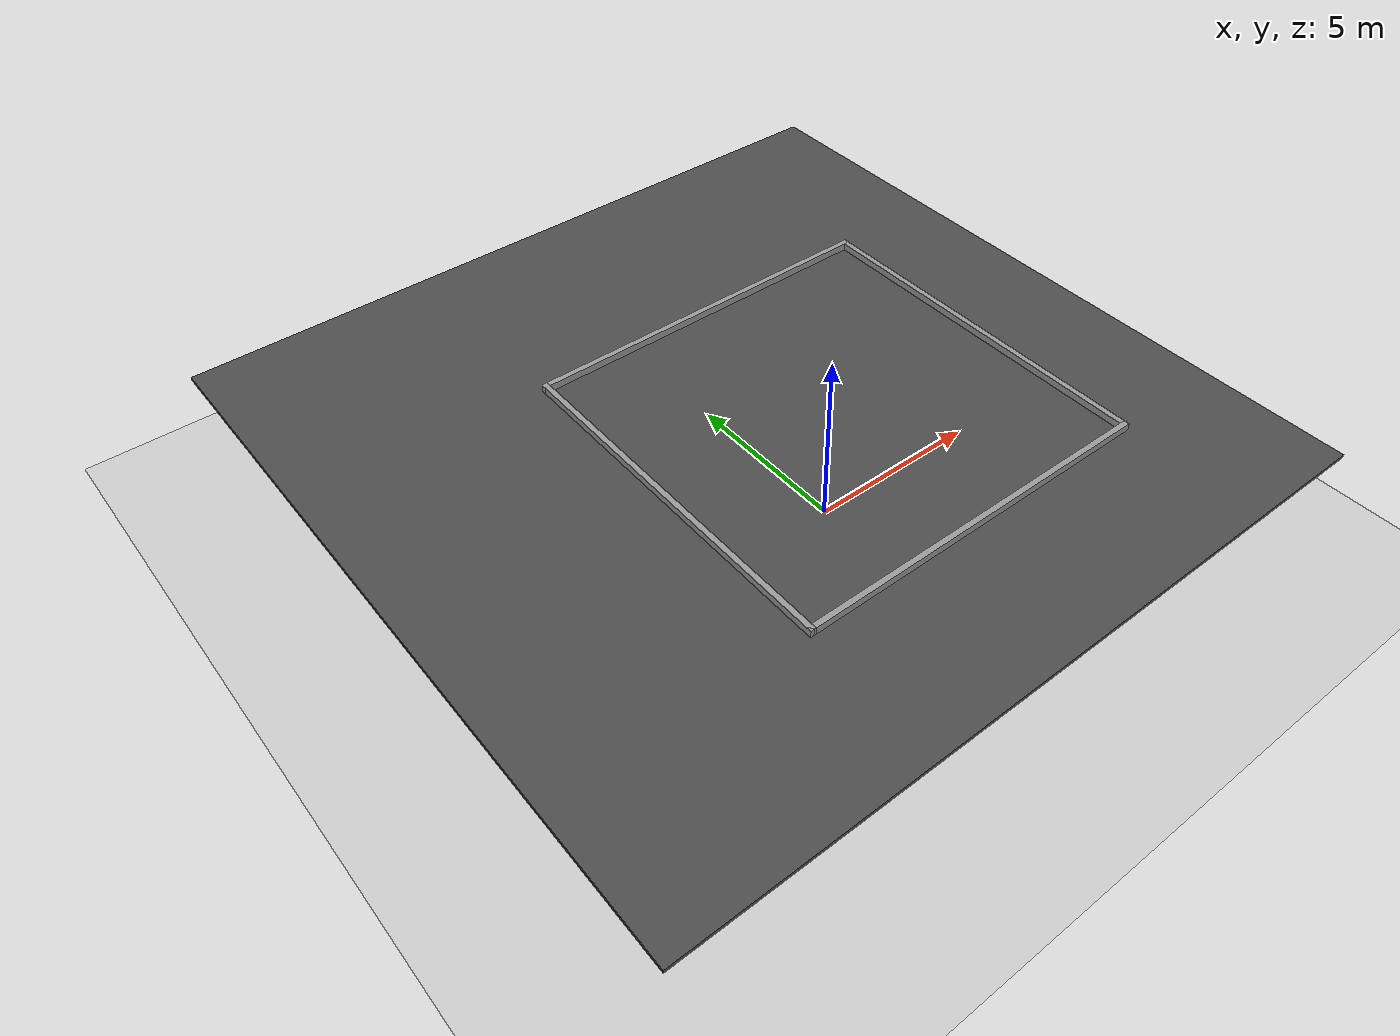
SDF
<sdf version="1.7">
 <world name="default">
  <model name="ground_plane">
   <static>1</static>
   <link name="link">
    <collision name="collision">
     <geometry><plane><normal>0 0 1</normal><size>100 100</size></plane></geometry>
     <surface><friction><ode><mu>100</mu><mu2>50</mu2></ode></friction></surface>
    </collision>
    <visual name="visual">
     <cast_shadows>0</cast_shadows>
     <geometry><plane><normal>0 0 1</normal><size>100 100</size></plane></geometry>
     <material>
      <script><uri>file://media/materials/scripts/gazebo.material</uri><name>Gazebo/Grey</name></script>
     </material>
    </visual>
   </link>
  </model>
  <model name="Indoor_emptyroom">
   <link name="Wall_31">
    <collision name="Wall_31_Collision">
     <geometry><box><size>10.15 0.15 5</size></box></geometry>
     <pose>0 0 1.25 0 -0 0</pose>
    </collision>
    <visual name="Wall_31_Visual">
     <pose>0 0 1.25 0 -0 0</pose>
     <geometry><box><size>10.15 0.15 5</size></box></geometry>
     <material>
      <script><uri>file://media/materials/scripts/gazebo.material</uri><name>Gazebo/Grey</name></script>
      <ambient>1 1 1 1</ambient>
     </material>
     <meta><layer>0</layer></meta>
    </visual>
    <pose>0 -5 0 0 -0 0</pose>
   </link>
   <link name="Wall_32">
    <collision name="Wall_32_Collision">
     <geometry><box><size>10.15 0.15 5</size></box></geometry>
     <pose>0 0 1.25 0 -0 0</pose>
    </collision>
    <visual name="Wall_32_Visual">
     <pose>0 0 1.25 0 -0 0</pose>
     <geometry><box><size>10.15 0.15 5</size></box></geometry>
     <material>
      <script><uri>file://media/materials/scripts/gazebo.material</uri><name>Gazebo/Grey</name></script>
      <ambient>1 1 1 1</ambient>
     </material>
     <meta><layer>0</layer></meta>
    </visual>
    <pose>5 0 0 0 -0 1.5708</pose>
   </link>
   <link name="Wall_33">
    <collision name="Wall_33_Collision">
     <geometry><box><size>10.15 0.15 5</size></box></geometry>
     <pose>0 0 1.25 0 -0 0</pose>
    </collision>
    <visual name="Wall_33_Visual">
     <pose>0 0 1.25 0 -0 0</pose>
     <geometry><box><size>10.15 0.15 5</size></box></geometry>
     <material>
      <script><uri>file://media/materials/scripts/gazebo.material</uri><name>Gazebo/Grey</name></script>
      <ambient>1 1 1 1</ambient>
     </material>
     <meta><layer>0</layer></meta>
    </visual>
    <pose>0 5 0 0 -0 3.14159</pose>
   </link>
   <link name="Wall_34">
    <collision name="Wall_34_Collision">
     <geometry><box><size>10.15 0.15 5</size></box></geometry>
     <pose>0 0 1.25 0 -0 0</pose>
    </collision>
    <visual name="Wall_34_Visual">
     <pose>0 0 1.25 0 -0 0</pose>
     <geometry><box><size>10.15 0.15 5</size></box></geometry>
     <material>
      <script><uri>file://media/materials/scripts/gazebo.material</uri><name>Gazebo/Grey</name></script>
      <ambient>1 1 1 1</ambient>
     </material>
     <meta><layer>0</layer></meta>
    </visual>
    <pose>-5 0 0 0 -0 -1.5708</pose>
   </link>
   <static>1</static>
  </model>
  <model name="landing-sign">
   <static>1</static>
   <pose>1.0 0.0 -0.02 0 -0 0</pose>
   <link name="link">
    <collision name="collision"><geometry><box><size>1 1 0.05</size></box></geometry></collision>
    <visual name="visual">
     <geometry><box><size>1 1 0.05</size></box></geometry>
     <material>
      <script>
       <uri>model://landing-sign/materials/scripts/landing.material</uri>
       <name>Gazebo/LandingPlatform</name>
      </script>
     </material>
    </visual>
   </link>
  </model>
  <model name="landing-sign1">
   <static>0</static>
   <pose>1.0 0.0 -0.02 0 -0 0</pose>
   <allow_auto_disable>0</allow_auto_disable>
   <link name="link">
    <gravity>0</gravity>
    <kinematic>1</kinematic>
    <inertial>
     <mass>5</mass>
     <inertia>
      <ixx>0.417708</ixx>
      <iyy>0.417708</iyy>
      <izz>0.833333</izz>
      <ixy>0</ixy>
      <ixz>0</ixz>
      <iyz>0</iyz>
     </inertia>
    </inertial>
    <collision name="collision">
     <geometry><box><size>1 1 0.001</size></box></geometry>
     <surface>
      <contact><collide_bitmask>65535</collide_bitmask></contact>
      <friction><ode><mu>1</mu><mu2>1</mu2><slip1>0</slip1><slip2>0</slip2></ode></friction>
     </surface>
    </collision>
    <visual name="visual">
     <geometry><box><size>1 1 0.05</size></box></geometry>
     <material>
      <script>
       <uri>model://landing-sign/materials/scripts/landing.material</uri>
       <name>Gazebo/LandingPlatform</name>
      </script>
     </material>
    </visual>
    <plugin name="moving_platform" filename="libmoving_platform_plugin.so">
     <link_name>link</link_name>
     <axis>y</axis>
     <amplitude>1</amplitude>
     <max_speed>0.5</max_speed>
     <center>0 0 0</center>
    </plugin>
   </link>
  </model>
  <model name="landing-sign-moving">
   <static>0</static>
   <pose>3.5 -3.5 0.025 0 -0 0</pose>
   <allow_auto_disable>0</allow_auto_disable>
   <link name="link">
    <gravity>0</gravity>
    <kinematic>1</kinematic>
    <inertial>
     <mass>5</mass>
     <inertia>
      <ixx>0.417708</ixx>
      <iyy>0.417708</iyy>
      <izz>0.833333</izz>
      <ixy>0</ixy>
      <ixz>0</ixz>
      <iyz>0</iyz>
     </inertia>
    </inertial>
    <collision name="collision">
     <geometry><box><size>1 1 0.05</size></box></geometry>
     <surface>
      <contact><collide_bitmask>65535</collide_bitmask></contact>
      <friction><ode><mu>1</mu><mu2>1</mu2><slip1>0</slip1><slip2>0</slip2></ode></friction>
     </surface>
    </collision>
    <visual name="visual">
     <geometry><box><size>1 1 0.05</size></box></geometry>
     <material>
      <script>
       <uri>model://landing-sign/materials/scripts/landing.material</uri>
       <name>Gazebo/LandingPlatform</name>
      </script>
     </material>
    </visual>
    <plugin name="moving_platform" filename="libmoving_platform_plugin.so">
     <link_name>link</link_name>
     <axis>y</axis>
     <amplitude>1</amplitude>
     <max_speed>0.5</max_speed>
     <center>0 0 0</center>
    </plugin>
   </link>
  </model>
  <model name="asphalt_plane">
   <static>1</static>
   <link name="link">
    <collision name="collision"><geometry><box><size>20 20 0.1</size></box></geometry></collision>
    <visual name="visual">
     <cast_shadows>0</cast_shadows>
     <geometry><box><size>20 20 0.1</size></box></geometry>
     <material>
      <script>
       <uri>model://asphalt_plane/materials/scripts</uri>
       <uri>model://asphalt_plane/materials/textures</uri>
       <name>vrc/asphalt</name>
      </script>
     </material>
    </visual>
   </link>
   <pose>-1.65801 1.12615 3.5 0 -0 0</pose>
  </model>
 </world>
</sdf>
